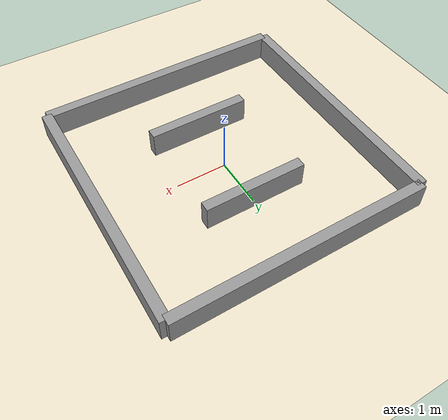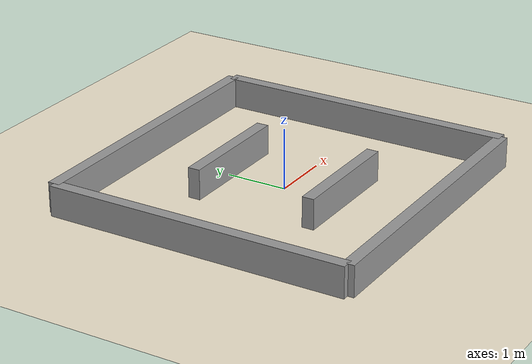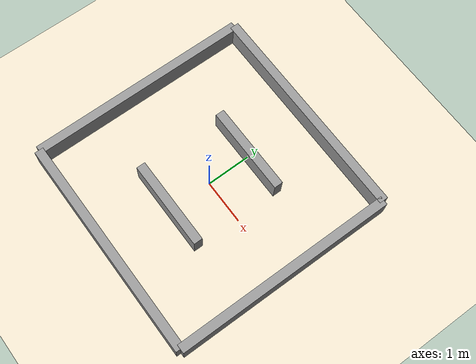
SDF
<?xml version="1.0" ?>

<sdf version="1.8">
  <world name="collision_test">
    <physics name='1ms' type='ignored'>
      <max_step_size>0.001</max_step_size>
      <real_time_factor>1</real_time_factor>
      <real_time_update_rate>1000</real_time_update_rate>
    </physics>
    <plugin name='ignition::gazebo::systems::Physics' filename='ignition-gazebo-physics-system'/>
    <plugin name='ignition::gazebo::systems::UserCommands' filename='ignition-gazebo-user-commands-system'/>
    <plugin name='ignition::gazebo::systems::SceneBroadcaster' filename='ignition-gazebo-scene-broadcaster-system'/>
    <plugin filename="ignition-gazebo-sensors-system" name="ignition::gazebo::systems::Sensors">
      <render_engine>ogre2</render_engine>
    </plugin>

    <plugin filename="libignition-gazebo-contact-system.so" name="ignition::gazebo::systems::Contact">
    </plugin>
    <scene>
      <ambient>1.0 1.0 1.0</ambient>
      <background>0.8 0.8 0.8</background>
    </scene>

    <light type="directional" name="sun">
      <cast_shadows>true</cast_shadows>
      <pose>0 0 10 0 0 0</pose>
      <diffuse>0.8 0.8 0.8 1</diffuse>
      <specular>0.2 0.2 0.2 1</specular>
      <attenuation>
        <range>1000</range>
        <constant>0.9</constant>
        <linear>0.01</linear>
        <quadratic>0.001</quadratic>
      </attenuation>
      <direction>-0.5 0.1 -0.9</direction>
    </light>

    <model name="ground_plane">
      <static>true</static>
      <link name="link">
        <collision name="collision">
          <geometry>
            <plane>
              <normal>0 0 1</normal>
              <size>100 100</size>
            </plane>
          </geometry>
        </collision>
        <visual name="visual">
          <geometry>
            <plane>
              <normal>0 0 1</normal>
              <size>100 100</size>
            </plane>
          </geometry>
          <material>
            <ambient>0.94 0.90 0.81 1</ambient>
            <diffuse>0.94 0.90 0.81 1</diffuse>
            <specular>1 1 1 0</specular>
          </material>
        </visual>
      </link>
    </model>

    <!-- A camera sensor that looks straight down on the map. -->
    <model name="sky_cam">
      <static>true</static>
      <link name="camera_link">
        <pose>0 0 10 1.57 1.57 0</pose>
        <sensor name="sky_cam" type="camera">
          <camera>
            <horizontal_fov>1.047</horizontal_fov>
            <image>
              <width>1024</width>
              <height>768</height>
            </image>
            <clip>
              <near>0.1</near>
              <far>100</far>
            </clip>
          </camera>
          <always_on>1</always_on>
          <update_rate>30</update_rate>
          <visualize>true</visualize>
          <topic>sky_cam</topic>
        </sensor>
      </link>
    </model>

    <include>
        <uri>SimpleWorld</uri>
        <pose>0.0 0.0 0.0 0 0 0</pose>
    </include>

  </world>
</sdf>

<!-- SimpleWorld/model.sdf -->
<sdf version="1.5">
  <model name="simple_world">
    <static>true</static>
    <link name="link_01">
      <pose>0.0 2.5 0.25 0 0 0</pose>
      <collision name="link_01_collision">
        <geometry>
          <box>
            <size>5.0 0.2 0.5</size>
          </box>
        </geometry>
      </collision>
      <visual name="link_01_visual">
        <cast_shadows>true</cast_shadows>
        <geometry>
          <box>
            <size>5.0 0.2 0.5</size>
          </box>
        </geometry>
        <material>
          <script>
            <uri>model://grey_wall/materials/scripts</uri>
            <uri>model://grey_wall/materials/textures</uri>
            <name>vrc/grey_wall</name>
          </script>
        </material>
      </visual>
    </link>

    <link name="link_02">
      <pose>0.0 -2.5 0.25 0 0 0</pose>
      <collision name="link_02_collision">
        <geometry>
          <box>
            <size>5.0 0.2 0.5</size>
          </box>
        </geometry>
      </collision>
      <visual name="link_02_visual">
        <cast_shadows>true</cast_shadows>
        <geometry>
          <box>
            <size>5.0 0.2 0.5</size>
          </box>
        </geometry>
        <material>
          <script>
            <uri>model://grey_wall/materials/scripts</uri>
            <uri>model://grey_wall/materials/textures</uri>
            <name>vrc/grey_wall</name>
          </script>
        </material>
      </visual>
    </link>

    <link name="link_03">
      <pose>2.5 0.0 0.25 0 0 1.5708</pose>
      <collision name="link_03_collision">
        <geometry>
          <box>
            <size>5.0 0.2 0.5</size>
          </box>
        </geometry>
      </collision>
      <visual name="link_03_visual">
        <cast_shadows>true</cast_shadows>
        <geometry>
          <box>
            <size>5.0 0.2 0.5</size>
          </box>
        </geometry>
        <material>
          <script>
            <uri>model://grey_wall/materials/scripts</uri>
            <uri>model://grey_wall/materials/textures</uri>
            <name>vrc/grey_wall</name>
          </script>
        </material>
      </visual>
    </link>

    <link name="link_04">
      <pose>-2.5 0.0 0.25 0 0 1.5708</pose>
      <collision name="link_04_collision">
        <geometry>
          <box>
            <size>5.0 0.2 0.5</size>
          </box>
        </geometry>
      </collision>
      <visual name="link_04_visual">
        <cast_shadows>true</cast_shadows>
        <geometry>
          <box>
            <size>5.0 0.2 0.5</size>
          </box>
        </geometry>
        <material>
          <script>
            <uri>model://grey_wall/materials/scripts</uri>
            <uri>model://grey_wall/materials/textures</uri>
            <name>vrc/grey_wall</name>
          </script>
        </material>
      </visual>
    </link>

    <link name="link_05">
      <pose>0.0 1.0 0.25 0 0 0</pose>
      <collision name="link_05_collision">
        <geometry>
          <box>
            <size>2.0 0.2 0.5</size>
          </box>
        </geometry>
      </collision>
      <visual name="link_05_visual">
        <cast_shadows>true</cast_shadows>
        <geometry>
          <box>
            <size>2.0 0.2 0.5</size>
          </box>
        </geometry>
        <material>
          <script>
            <uri>model://grey_wall/materials/scripts</uri>
            <uri>model://grey_wall/materials/textures</uri>
            <name>vrc/grey_wall</name>
          </script>
        </material>
      </visual>
    </link>

    <link name="link_06">
      <pose>0.0 -1.0 0.25 0 0 0</pose>
      <collision name="link_06_collision">
        <geometry>
          <box>
            <size>2.0 0.2 0.5</size>
          </box>
        </geometry>
      </collision>
      <visual name="link_06_visual">
        <cast_shadows>true</cast_shadows>
        <geometry>
          <box>
            <size>2.0 0.2 0.5</size>
          </box>
        </geometry>
        <material>
          <script>
            <uri>model://grey_wall/materials/scripts</uri>
            <uri>model://grey_wall/materials/textures</uri>
            <name>vrc/grey_wall</name>
          </script>
        </material>
      </visual>
    </link>

  </model>
</sdf>
